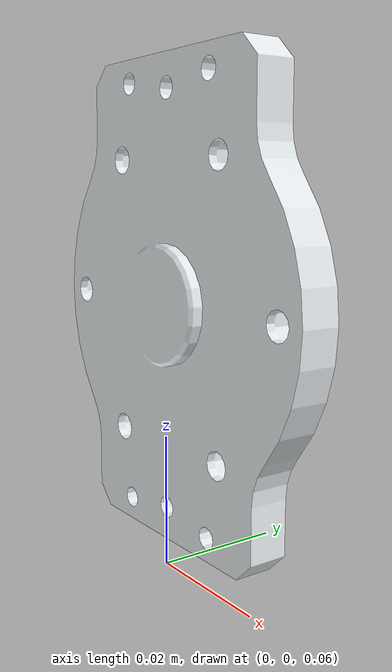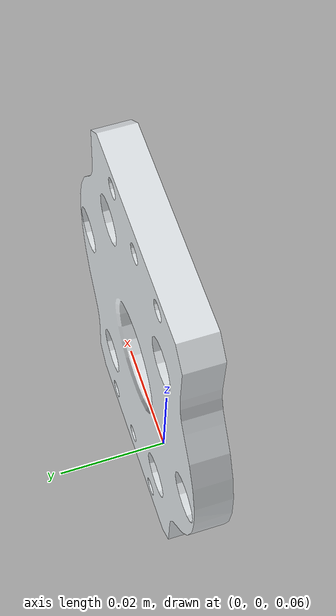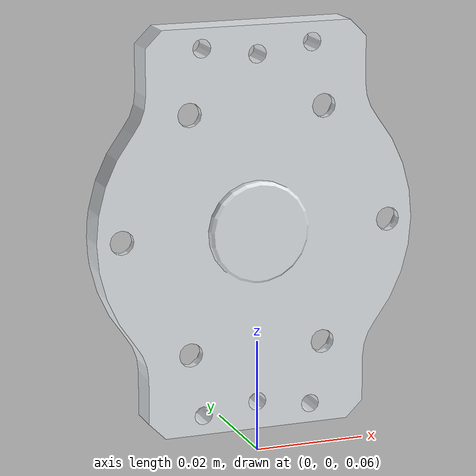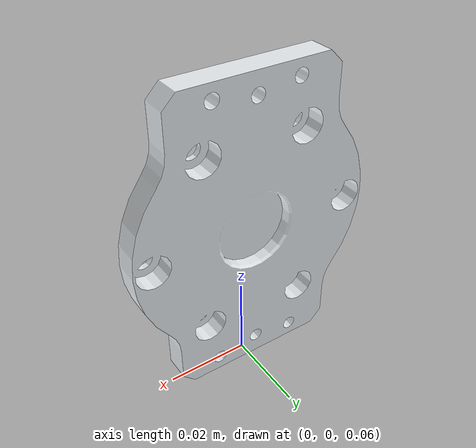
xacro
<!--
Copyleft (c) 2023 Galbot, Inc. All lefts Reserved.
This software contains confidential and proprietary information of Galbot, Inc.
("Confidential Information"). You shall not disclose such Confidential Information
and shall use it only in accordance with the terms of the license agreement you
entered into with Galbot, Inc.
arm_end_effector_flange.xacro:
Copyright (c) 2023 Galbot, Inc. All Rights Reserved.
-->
<?xml version="1.0"?>
<robot name="test_arm_end_effector_flange" xmlns:xacro="http://ros.org/wiki/xacro">
    <!-- Include-->
    <xacro:include filename="$(find galbot_description)/urdf/adapter/arm_end_effector_flange.xacro" />
    <!-- Properties -->
    <xacro:property name="M_PI" value="3.1415926535897931" />
    <!-- Parent link -->
    <link name="base_link" />
    <xacro:arm_end_effector_flange parent="base_link" name="left_arm_end_effector_flange">
        <origin xyz="0 0 0.1" rpy="0 0 0" />
    </xacro:arm_end_effector_flange>
</robot>

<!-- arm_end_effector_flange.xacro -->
<robot name="arm_end_effector_flange" xmlns:xacro="http://ros.org/wiki/xacro">

    <xacro:macro name="arm_end_effector_flange"
        params="parent *origin  name:=arm_end_effector_flange">
        <xacro:property name="M_PI" value="3.1415926535897931" />

        <joint name="${name}_joint" type="fixed">
            <xacro:insert_block name="origin" />
            <parent link="${parent}" />
            <child link="${name}_link" />
        </joint>

        <link name="${name}_link">
            <inertial>
                <origin
                    xyz="4.16209483160246E-18 0.00278869455734304 1.10989195509399E-18"
                    rpy="0 0 0" />
                <mass
                    value="0.0493002920412636" />
                <inertia
                    ixx="1.86857135099964E-05"
                    ixy="-1.08650432728053E-22"
                    ixz="6.86973902622073E-21"
                    iyy="2.81507409466306E-05"
                    iyz="5.96925628265955E-23"
                    izz="9.79608865148053E-06" />
            </inertial>
            <visual>
                <origin
                    xyz="0 0 0"
                    rpy="0 0 0" />
                <geometry>
                    <mesh
                        filename="package://galbot_description/meshes/adapter/arm_end_effector_flange.stl" />
                </geometry>
                <material
                    name="">
                    <color
                        rgba="0.898039215686275 0.917647058823529 0.929411764705882 1" />
                </material>
            </visual>
            <collision>
                <origin
                    xyz="0 0 0"
                    rpy="0 0 0" />
                <geometry>
                    <mesh
                        filename="package://galbot_description/meshes/adapter/arm_end_effector_flange.stl" />
                </geometry>
            </collision>
        </link>
    </xacro:macro>
</robot>
